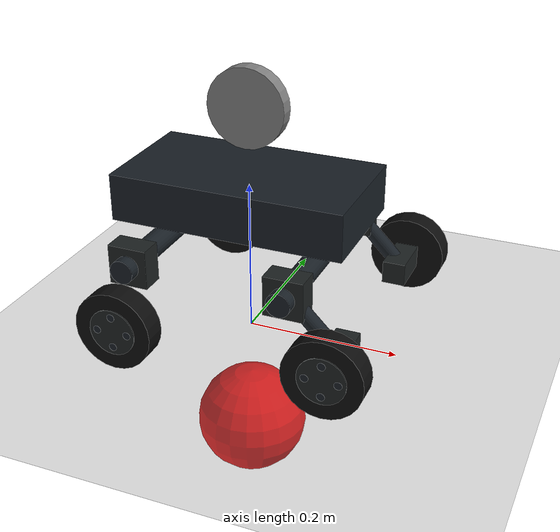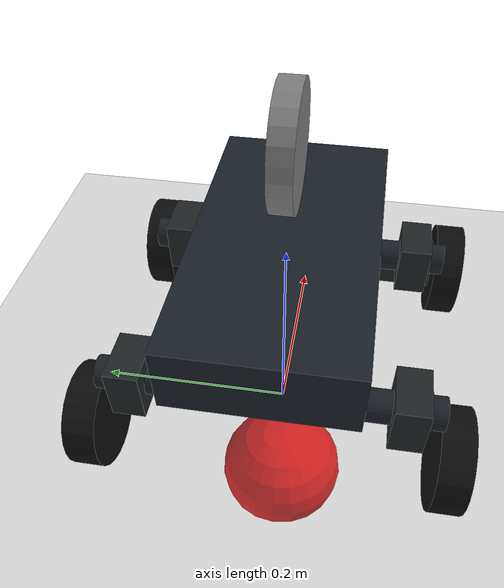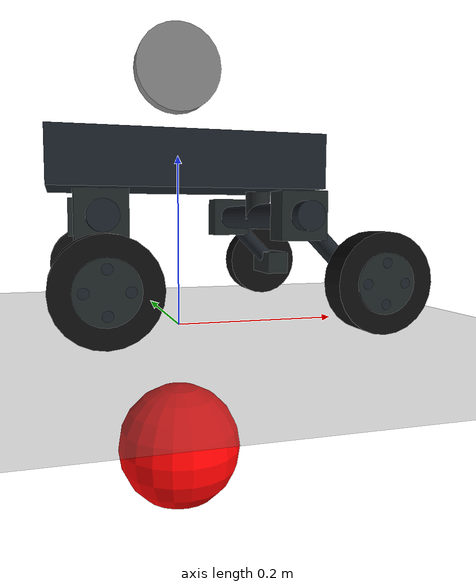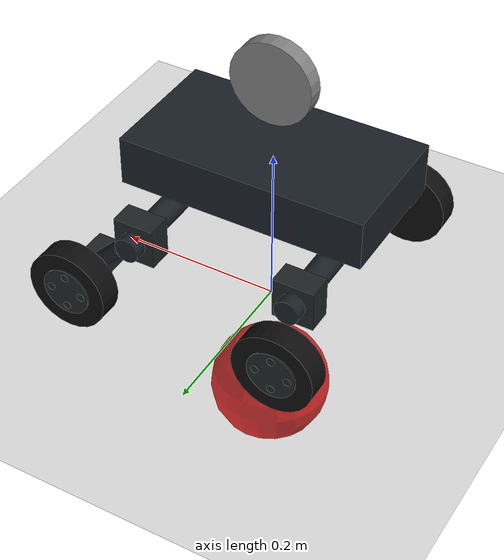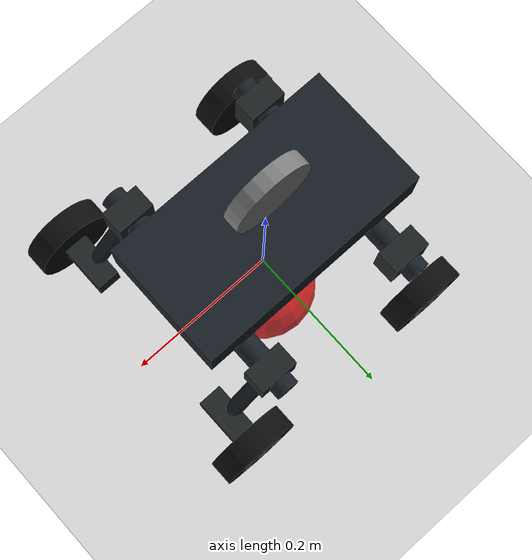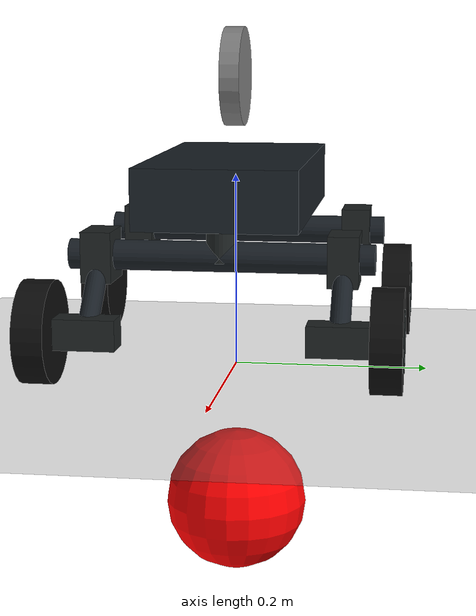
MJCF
<mujoco model="rover">
    <compiler angle="radian" meshdir="meshes" balanceinertia="true"/>

    <default>
        <light castshadow="false" diffuse="1 1 1" />
        <camera fovy="90" />
        <geom contype="1" conaffinity="1" />
    </default>

	<default class="acker_solver_param">
		<!--solver impedance and reference(?) for ackerman equality constraint-->
		<!--solref: (timeconst, dampratio)
			b = 2 / (dmax * timeconst)
			k = d(r) / (dmax * dmax * timeconst * timeconst * dampratio * dampratio)
		-->
		<equality solimp="0.9950 0.9990 0.0001" solref="0.0100 0.7500"/>
	</default>

    <asset>
        <material name="blue_steel" specular="1" shininess="1" reflectance="1" rgba="0.1 0.125 0.15 1" emission="1" />
        <material name="light_grey" specular="0.5" shininess="0" reflectance="0" rgba="0.12 0.14 0.14 1" emission="1" />
        <material name="carbon" specular="1" shininess="1" reflectance="1" rgba="0.05 0.05 0.05 1" emission="1" />
        <material name="green" specular="1" shininess="1" reflectance="0" rgba="0.1 0.7 0.1 1" emission="1" />
        <material name="brown" specular="1" shininess="1" reflectance="0" rgba="0.396 0.263 0.03 1" emission="1" />
        <material name="blue" rgba="0.17 0.51 0.79 1"/>
    </asset>

    <worldbody>
        <geom name="floor" pos="0 0 -0.001" size="0 0 0.5" type="plane"/>

        <body pos="3 0 3">
            <camera mode="targetbody" target="base_link"/>
        </body>

        <!-- control visualizations -->
        <body name="hand" pos="0 0 -0.15" mocap="true">
            <geom type="box" size=".02 .04 .06" rgba="0 .9 0 .5" contype="2" conaffinity="2"/>
        </body>

        <body name="target" pos="0 0 -0.15" mocap="true">
            <geom name="target" type="sphere" size="0.075" rgba="1 0 0 1" contype="4" conaffinity="4"/>
        </body>

        <body name="obstacle" pos="0 0 -0.15" mocap="true">
            <geom type="sphere" size="0.05" rgba="0 0 1 1" contype="4" conaffinity="4"/>
        </body>

        <light directional="true" pos="-0.5 0.5 3" dir="0 0 -1" />

        <body name="base_link" pos="0 0 0.1">

            <!-- body -->
            <geom name="link0" type="box" size="0.15 0.08 0.03" pos="0 0 0.09" material="blue_steel"/>
            <camera name="vision1" pos="0 0 0.2" quat="0.50039816  0.49999984 -0.49999984 -0.49960184"/>
            <camera name="vision2" pos="0 0 0.2" quat="-0.4996012  -0.49920352 -0.50079617 -0.50039753"/>
            <camera name="vision3" pos="0 0 0.2" quat="5.63312174e-04 -5.62863772e-04 -7.06824957e-01 -7.07388045e-01"/>
            <camera name="vision4" pos="0 0 0.2" quat="0.7073882691671998 0.706825181105366 0.0 0.0"/>

            <inertial pos="0 0 0.125" mass="20" diaginertia="0.25 0.25 0.25"/>
            <freejoint/>

			<body name="steering_wheel" pos="0 0 .2">
                <joint name="steering_wheel" type="hinge" pos="0 0 0" axis="0 0 1" limited="true" range="-.29 .29" damping="0"/>
				<geom type="cylinder" size=".05 .01" axisangle="1 0 0 1.57" contype="16" conaffinity="16" mass="0.002"/>
			</body>

            <!-- turning axl -->
            <body name="turning_axl" pos="-0.1 0 0.05">
                <geom name="turning_axl_cyl" type="cylinder" size="0.015 0.025" pos="0 0 0" material="light_grey" contype="2" conaffinity="2"/>
                <!-- front axl -->
                <body name="front_axl" pos="0 0 -0.02">
                    <geom name="front_axl" type="cylinder" pos="0 0 0" material="blue_steel" size="0.015 0.15" euler="1.57 0 0" contype="16" conaffinity="16"/>
                    <!-- front right axl -->
                    <body name="FR_axl_box" pos="0 0.12 0">
                        <geom name="FR_axl_box" type="box" size="0.025 0.015 0.025" pos="0 0 0" material="light_grey" contype="16" conaffinity="16"/>
                        <!-- front right wheel -->
                        <body name="FR_wheel" pos="0 0.045 -0.065">
                            <joint name="FR_joint0" axis="0 0 1" pos="0 0 0" damping="0.01" limited="true" range="-.6 .6"/>
                            <joint name="FR_joint1" axis="0 -1 0" pos="0 0 0" damping="0.01"/>
                            <geom name="FR_wheel" type="cylinder" pos="0 0 0" material="carbon" size="0.05 0.015" euler="1.57 0 0"/>
                            <geom name="FR_hub" type="cylinder" pos="0 0.0151 0" material="light_grey" size="0.03 0.001" euler="1.57 0 0"/>
                            <geom name="FR_nut1" type="cylinder" pos="0 0.0152 0.02" material="blue_steel" size="0.005 0.001" euler="1.57 0 0"/>
                            <geom name="FR_nut2" type="cylinder" pos="0 0.0152 -0.02" material="blue_steel" size="0.005 0.001" euler="1.57 0 0"/>
                            <geom name="FR_nut3" type="cylinder" pos="0.02 0.0152 0" material="blue_steel" size="0.005 0.001" euler="1.57 0 0"/>
                            <geom name="FR_nut4" type="cylinder" pos="-0.02 0.0152 0" material="blue_steel" size="0.005 0.001" euler="1.57 0 0"/>
                        </body>
                    </body>
                    <!-- front left axl -->
                    <body name="FL_axl_box" pos="0 -0.12 0">
                        <geom name="FL_axl_box" type="box" size="0.025 0.015 0.025" pos="0 0 0" material="light_grey" contype="16" conaffinity="16"/>
                        <!-- front left wheel -->
                        <body name="FL_wheel" pos="0 -0.045 -0.065">
                            <geom name="FL_wheel" type="cylinder" pos="0 0 0" material="carbon" size="0.05 0.015" euler="1.57 0 0"/>
                            <joint name="FL_joint0" axis="0 0 1" pos="0 0 0" damping="0.01" limited="true" range="-.6 .6"/>
                            <joint name="FL_joint1" axis="0 -1 0" pos="0 0 0" damping="0.01"/>
                            <geom name="FL_hub" type="cylinder" pos="0 -0.0151 0" material="light_grey" size="0.03 0.001" euler="1.57 0 0"/>
                            <geom name="FL_nut1" type="cylinder" pos="0 -0.0152 0.02" material="blue_steel" size="0.005 0.001" euler="1.57 0 0"/>
                            <geom name="FL_nut2" type="cylinder" pos="0 -0.0152 -0.02" material="blue_steel" size="0.005 0.001" euler="1.57 0 0"/>
                            <geom name="FL_nut3" type="cylinder" pos="0.02 -0.0152 0" material="blue_steel" size="0.005 0.001" euler="1.57 0 0"/>
                            <geom name="FL_nut4" type="cylinder" pos="-0.02 -0.0152 0" material="blue_steel" size="0.005 0.001" euler="1.57 0 0"/>
                        </body>
                    </body>
                </body>
            </body>

            <!-- rear axl -->
            <body name="static_axl" pos="0.1 0 0.05">
                <geom name="static_axl_cyl" type="cylinder" size="0.015 0.025" pos="0 0 0" material="light_grey" contype="2" conaffinity="2"/>
                <body name="rear_axl" pos="0 0 -0.02">
                    <geom name="rear_axl" type="cylinder" pos="0 0 0" material="blue_steel" size="0.015 0.15" euler="1.57 0 0"/>
                    <!-- rear right axl -->
                    <body name="RR_axl_box" pos="0 0.12 0">
                        <geom name="RR_axl_box" type="box" size="0.025 0.015 0.025" pos="0 0 0" material="light_grey"/>
                        <!-- rear right strut -->
                        <body name="RR_strut" pos="0.025 0 -0.025">
                            <geom name="RR_strut" type="cylinder" pos="0 0 0" material="blue_steel" size="0.01 0.05" euler="0 2.356194 0"/>
                            <!-- rear right motor box -->
                            <body name="RR_motor_box" pos="0.04 0 -0.04">
                                <geom name="RR_motor_box" type="box" size="0.015 0.03 0.015" pos="0 0 0" material="light_grey" contype="2" conaffinity="2"/>
                                <!-- rear right wheel -->
                                <body name="RR_wheel" pos="0 0.045 0">
                                    <geom name="RR_wheel" type="cylinder" pos="0 0 0" material="carbon" size="0.05 0.015" euler="1.57 0 0" friction="2 0.005 0.0001"/>
                                    <joint name="RR_joint" axis="0 -1 0" pos="0 0 0" damping="0.01"/>
                                    <geom name="RR_hub" type="cylinder" pos="0 0.0151 0" material="light_grey" size="0.03 0.001" euler="1.57 0 0"/>
                                    <geom name="RR_nut1" type="cylinder" pos="0 0.0152 0.02" material="blue_steel" size="0.005 0.001" euler="1.57 0 0"/>
                                    <geom name="RR_nut2" type="cylinder" pos="0 0.0152 -0.02" material="blue_steel" size="0.005 0.001" euler="1.57 0 0"/>
                                    <geom name="RR_nut3" type="cylinder" pos="0.02 0.0152 0" material="blue_steel" size="0.005 0.001" euler="1.57 0 0"/>
                                    <geom name="RR_nut4" type="cylinder" pos="-0.02 0.0152 0" material="blue_steel" size="0.005 0.001" euler="1.57 0 0"/>
                                </body>
                            </body>
                        </body>
                    </body>
                    <!-- rear left axl -->
                    <body name="RL_axl_box" pos="0 -0.12 0">
                        <geom name="RL_axl_box" type="box" size="0.025 0.015 0.025" pos="0 0 0" material="light_grey"/>
                        <!-- rear left strut -->
                        <body name="RL_strut" pos="0.025 0 -0.025">
                            <geom name="RL_strut" type="cylinder" pos="0 0 0" material="blue_steel" size="0.01 0.05" euler="0 2.356194 0"/>
                            <!-- rear left motor box -->
                            <body name="RL_motor_box" pos="0.04 0 -0.04">
                                <geom name="RL_motor_box" type="box" size="0.015 0.03 0.015" pos="0 0 0" material="light_grey" contype="2" conaffinity="2"/>
                                <!-- rear left wheel -->
                                <body name="RL_wheel" pos="0 -0.045 0">
                                    <geom name="RL_wheel" type="cylinder" pos="0 0 0" material="carbon" size="0.05 0.015" euler="1.57 0 0" friction="2 0.005 0.0001"/>
                                    <joint name="RL_joint" axis="0 -1 0" pos="0 0 0" damping="0.01"/>
                                    <geom name="RL_hub" type="cylinder" pos="0 -0.0151 0" material="light_grey" size="0.03 0.001" euler="1.57 0 0"/>
                                    <geom name="RL_nut1" type="cylinder" pos="0 -0.0152 0.02" material="blue_steel" size="0.005 0.001" euler="1.57 0 0"/>
                                    <geom name="RL_nut2" type="cylinder" pos="0 -0.0152 -0.02" material="blue_steel" size="0.005 0.001" euler="1.57 0 0"/>
                                    <geom name="RL_nut3" type="cylinder" pos="0.02 -0.0152 0" material="blue_steel" size="0.005 0.001" euler="1.57 0 0"/>
                                    <geom name="RL_nut4" type="cylinder" pos="-0.02 -0.0152 0" material="blue_steel" size="0.005 0.001" euler="1.57 0 0"/>
                                </body>
                            </body>
                        </body>
                    </body>
                </body>
            </body>

            <body name="EE" pos="0 0 0.1" euler="0 0 0">
            </body>

        </body>

    </worldbody>

	<tendon>
		<fixed name="rear_differential">
			<joint joint="RR_joint" coef="1"/>
			<joint joint="RL_joint" coef="1"/>
		</fixed>
	</tendon>

    <actuator>
        <motor name="wheel" joint="steering_wheel" ctrllimited="true" ctrlrange="-1 1" gear="2"/>
        <motor name="drive" tendon="rear_differential" ctrllimited="true" ctrlrange="-1.0 1.0" gear="1.5"/>
    </actuator>

	<equality>
		<joint name="FL-steer" joint1="FL_joint0" joint2="steering_wheel" polycoef="0.000093610018132620019 2.0041497325730204 1.4716131190668178 -1.0929725380842041 -3.2252012765547819" class="acker_solver_param"/>
		<joint name="FR-steer" joint1="FR_joint0" joint2="steering_wheel" polycoef="-0.00017013070152971507 2.0039379507086514 -1.4684576386267671 -1.0901354124362155 3.1974185558159771" class="acker_solver_param"/>
	</equality>

</mujoco>
